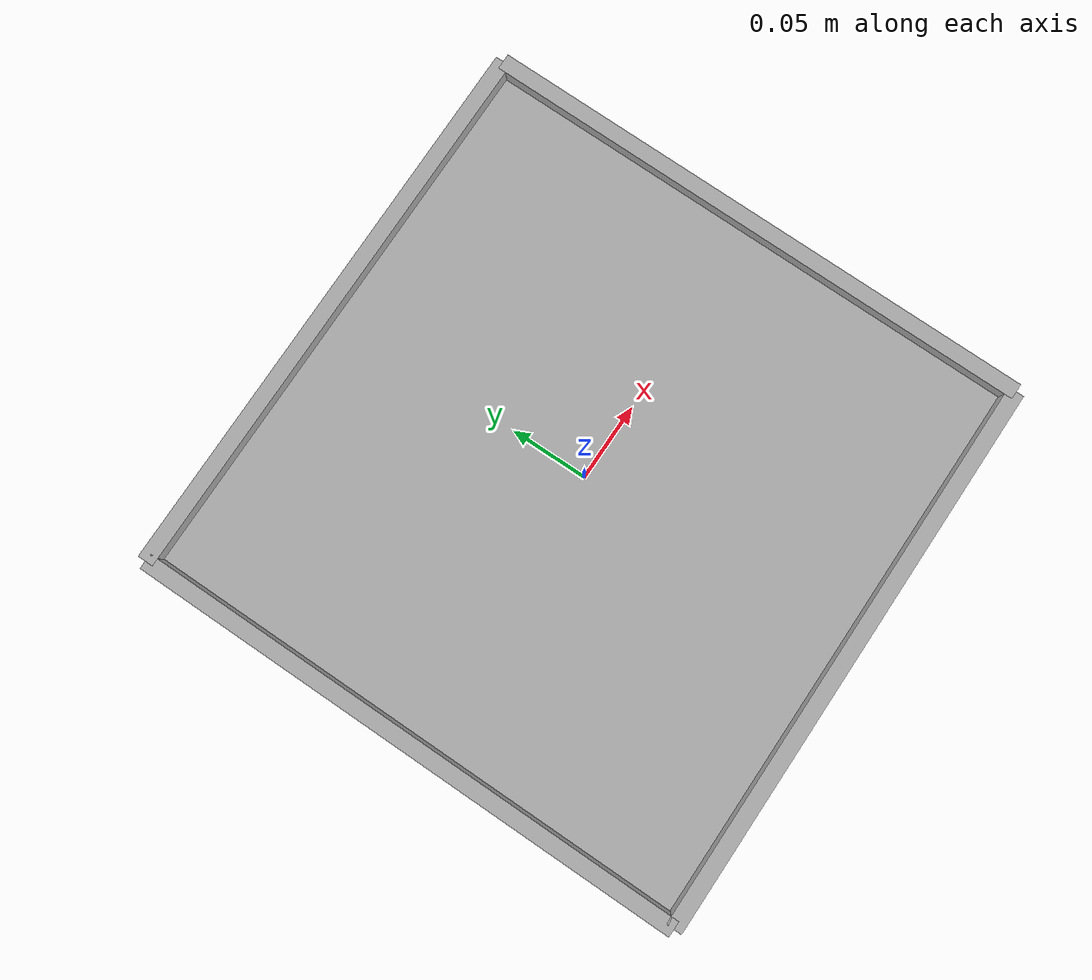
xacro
<?xml version="1.0" ?>
<robot name="turtlebot3_carrier" xmlns:xacro="http://ros.org/wiki/xacro">

  <material name="LightGrey">
      <color rgba="0.7 0.7 0.7 1.0" />
  </material>

  <xacro:macro name="cylinder_inertia" params="m r h">
        <inertia  ixx="${m*(3*r*r+h*h)/12}" ixy = "0" ixz = "0"
                    iyy="${m*(3*r*r+h*h)/12}" iyz = "0"
                    izz="${m*r*r/2}" />
  </xacro:macro>

  <xacro:macro name="box_inertia" params="m x y z">
          <inertia  ixx="${m*(y*y+z*z)/12}" ixy = "0" ixz = "0"
                    iyy="${m*(x*x+z*z)/12}" iyz = "0"
                    izz="${m*(x*x+z*z)/12}" />
  </xacro:macro>

  <xacro:macro name="sphere_inertia" params="m r">
          <inertia  ixx="${2*m*r*r/5}" ixy = "0" ixz = "0"
                    iyy="${2*m*r*r/5}" iyz = "0"
                    izz="${2*m*r*r/5}" />
  </xacro:macro>

  <link name="carrierplate_link">
    <visual>
      <origin xyz="0.0 0.0 0.0" />
      <geometry>
        <box size="0.36 0.36 0.008" />
      </geometry>
      <material name="LightGrey"/>
    </visual>
    <inertial>
      <mass value="0.001"/>
      <xacro:box_inertia m="0.001" x="0.36" y="0.36" z="0.008"/>
    </inertial>
    <collision>
      <origin xyz="0 0 0" rpy="0 0 0"/>
      <geometry>
        <box size="0.36 0.36 0.008"/>
      </geometry>
      <surface>
        <friction>
          <ode>
            <mu>10</mu>
            <mu2>10</mu2>
          </ode>
        </friction>
      </surface>
   </collision>
  </link>

  <link name="randje1_link">
    <visual>
      <origin xyz="0.0 0.0 0.0" />
      <geometry>
        <box size="0.36 0.01 0.01" />
      </geometry>
      <material name="LightGrey"/>
    </visual>
    <inertial>
      <mass value="0.0001"/>
      <xacro:box_inertia m="0.0001" x="0.36" y="0.001" z="0.001"/>
    </inertial>
    <collision>
      <origin xyz="0 0 0" rpy="0 0 0"/>
      <geometry>
        <box size="0.36 0.01 0.01"/>
      </geometry>
      <surface>
        <friction>
          <ode>
            <mu>10</mu>
            <mu2>10</mu2>
          </ode>
        </friction>
      </surface>
   </collision>
  </link>

  <link name="randje2_link">
    <visual>
      <origin xyz="0.0 0.0 0.0" />
      <geometry>
        <box size="0.36 0.01 0.01" />
      </geometry>
      <material name="LightGrey"/>
    </visual>
    <inertial>
      <mass value="0.0001"/>
      <xacro:box_inertia m="0.0001" x="0.36" y="0.001" z="0.001"/>
    </inertial>
    <collision>
      <origin xyz="0 0 0" rpy="0 0 0"/>
      <geometry>
        <box size="0.36 0.01 0.01"/>
      </geometry>
      <surface>
        <friction>
          <ode>
            <mu>10</mu>
            <mu2>10</mu2>
          </ode>
        </friction>
      </surface>
   </collision>
  </link>

  <link name="randje3_link">
    <visual>
      <origin xyz="0.0 0.0 0.0" />
      <geometry>
        <box size="0.36 0.01 0.01" />
      </geometry>
      <material name="LightGrey"/>
    </visual>
    <inertial>
      <mass value="0.0001"/>
      <xacro:box_inertia m="0.0001" x="0.36" y="0.001" z="0.001"/>
    </inertial>
    <collision>
      <origin xyz="0 0 0" rpy="0 0 0"/>
      <geometry>
        <box size="0.36 0.01 0.01"/>
      </geometry>
      <surface>
        <friction>
          <ode>
            <mu>10</mu>
            <mu2>10</mu2>
          </ode>
        </friction>
      </surface>
   </collision>
  </link>

  <link name="randje4_link">
    <visual>
      <origin xyz="0.0 0.0 0.0" />
      <geometry>
        <box size="0.36 0.01 0.01" />
      </geometry>
      <material name="LightGrey"/>
    </visual>
    <inertial>
      <mass value="0.0001"/>
      <xacro:box_inertia m="0.0001" x="0.36" y="0.001" z="0.001"/>
    </inertial>
    <collision>
      <origin xyz="0 0 0" rpy="0 0 0"/>
      <geometry>
        <box size="0.36 0.01 0.01"/>
      </geometry>
      <surface>
        <friction>
          <ode>
            <mu>10</mu>
            <mu2>10</mu2>
          </ode>
        </friction>
      </surface>
   </collision>
  </link>

  <joint name="randje1_jount" type="fixed">
    <origin xyz="0.18 0 0.008" rpy="0.0 0.0 ${pi/2}"/>
    <parent link="carrierplate_link" />
    <child link="randje1_link" />
  </joint>

  <joint name="randje2_jount" type="fixed">
    <origin xyz="-0.18 0 0.008" rpy="0.0 0.0 ${pi/2}"/>
    <parent link="carrierplate_link" />
    <child link="randje2_link" />
  </joint>

  <joint name="randje3_jount" type="fixed">
    <origin xyz="0.0 0.18 0.008" rpy="0.0 0.0 0.0"/>
    <parent link="carrierplate_link" />
    <child link="randje3_link" />
  </joint>

  <joint name="randje4_jount" type="fixed">
    <origin xyz="0.0 -0.18 0.008" rpy="0.0 0.0 0.0"/>
    <parent link="carrierplate_link" />
    <child link="randje4_link" />
  </joint>

</robot>
